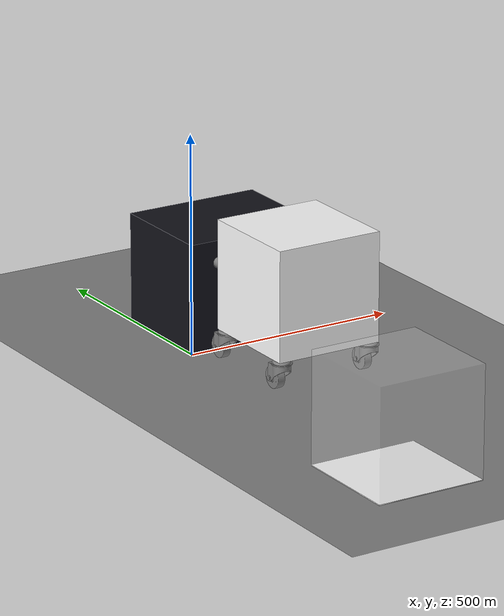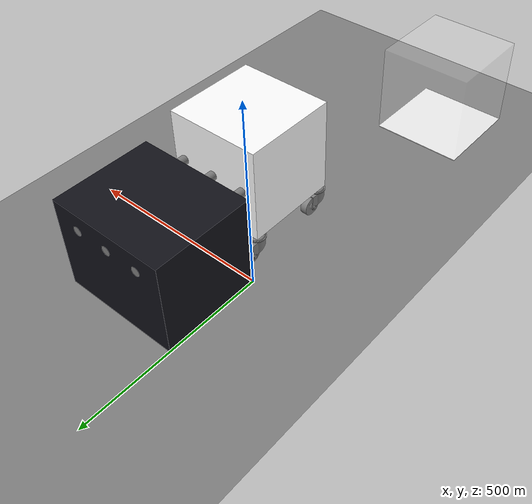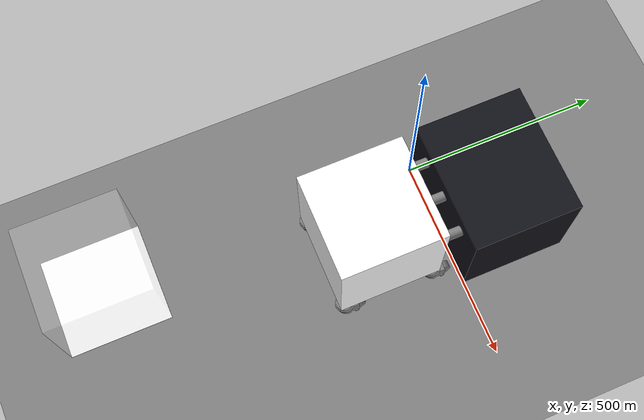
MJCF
<mujoco model="pushing_striker">
  <compiler inertiafromgeom="true" angle="radian" coordinate="local" meshdir="meshes/"/>
  <option timestep="1.0" solver="PGS"  gravity="0 0 0" iterations="20" integrator="Euler"/>

  <asset>
    <mesh file="push_box.stl"/>
    <mesh file="pushing_hand.stl"/>
    <mesh file="caster_wheel.stl"/>
    <mesh file="caster_wheel_O.stl"/>
    <mesh file="caster_middle.stl"/>
    <mesh file="caster_top.stl"/>

    <texture type="skybox" builtin="gradient" rgb1=".2 .3 .4" rgb2="1 1 1"
      width="100" height="100"/>
    <material name="MatViz" specular="1" shininess=".1" reflectance="0.5" rgba=".07 .07 .1 1"/>
  </asset>
  <default>
    <joint armature='0.04' damping="1"/>
    <geom friction="0 0 0" density="300" margin="0.002" condim="1" contype="0" conaffinity="0"/>
    <default class ="vizNcoll">
      <geom material="MatViz" type="mesh" condim="1" contype="1" conaffinity="1" margin="0.001"/>
    </default>
  </default>

  <worldbody>
    <light diffuse=".5 .5 .5" pos="0 0 3" dir="0 0 -1"/>
    <geom name="table" type="plane" pos="0 0 0" size="1000 2000 1000" contype="1" conaffinity="1"/>

    <body name="push_box" childclass="vizNcoll" pos="0 0 0">
      <geom mesh="push_box" contype="1" conaffinity="0"/>
    </body>

    <body name="pushing_hand_1" pos="68 260 200">
      <joint name="slider_1" type="slide" pos="0 0 0" axis="0 1 0" range="-2 2" damping="1.0" limited="true"/>
      <geom mesh="pushing_hand" axisangle="1 0 0 1.570796" type="mesh" condim="1" contype="1" conaffinity="0"/>
    </body>
    <body name="pushing_hand_2" pos="158 260 200">
      <joint name="slider_2" type="slide" pos="0 0 0" axis="0 1 0" range="-200 0" damping="1.0" limited="true"/>
      <geom mesh="pushing_hand" axisangle="1 0 0 1.570796" type="mesh" condim="1" contype="1" conaffinity="0"/>
    </body>
    <body name="pushing_hand_3" pos="248 260 200">
      <joint name="slider_3" type="slide" pos="0 0 0" axis="0 1 0" range="-200 0" damping="1.0" limited="true"/>
      <geom mesh="pushing_hand" axisangle="1 0 0 1.570796" type="mesh" condim="1" contype="1" conaffinity="0"/>
    </body>

    <body name="object" pos="158 -180 195" axisangle="0 0 1 3.141592">
      <geom type="box" rgba="1 1 1 1" pos="0 0 0" size="125 125 125" contype="1" conaffinity="0"/>
      <body name="top_1" pos="110 110 -170" >
        <geom mesh="caster_top" axisangle="1 0 0 1.570796" type="mesh" condim="1" contype="1" conaffinity="0"/>
        <body name="middle_1" pos="0 0 0" >
          <joint name="top_middle_1" type="hinge" pos="0 0 0" axis="0 0 1" range="-3.141592 3.141592" damping="1.0" limited="true"/>
          <geom mesh="caster_middle" axisangle="1 0 0 1.570796" type="mesh" condim="1" contype="1" conaffinity="0"/>
          <body name="wheel_1" pos="0 -25 0">
              <joint name="middle_wheel_1" type="hinge" pos="0 0 0" axis="1 0 0" damping="0.01" />
              <geom mesh="caster_wheel_O" axisangle="1 0 0 1.570796" type="mesh" condim="1" contype="1" conaffinity="0"/>
          </body>
        </body>
      </body>
      <body name="top_2" pos="110 -110 -170" >
        <geom mesh="caster_top" axisangle="1 0 0 1.570796" type="mesh" condim="1" contype="1" conaffinity="0"/>
        <body name="middle_2" pos="0 0 0" >
          <joint name="top_middle_2" type="hinge" pos="0 0 0" axis="0 0 1" range="-3.141592 3.141592" damping="1.0" limited="true"/>
          <geom mesh="caster_middle" axisangle="1 0 0 1.570796" type="mesh" condim="1" contype="1" conaffinity="0"/>
          <body name="wheel_2" pos="0 -25 0">
              <joint name="middle_wheel_2" type="hinge" pos="0 0 0" axis="1 0 0" damping="0.01" />
              <geom mesh="caster_wheel_O" axisangle="1 0 0 1.570796" type="mesh" condim="1" contype="1" conaffinity="0"/>
          </body>
        </body>
      </body>
      <body name="top_3" pos="-110 110 -170" >
        <geom mesh="caster_top" axisangle="1 0 0 1.570796" type="mesh" condim="1" contype="1" conaffinity="0"/>
        <body name="middle_3" pos="0 0 0" >
          <joint name="top_middle_3" type="hinge" pos="0 0 0" axis="0 0 1" range="-3.141592 3.141592" damping="1.0" limited="true"/>
          <geom mesh="caster_middle" axisangle="1 0 0 1.570796" type="mesh" condim="1" contype="1" conaffinity="0"/>
          <body name="wheel_3" pos="0 -25 0">
              <joint name="middle_wheel_3" type="hinge" pos="0 0 0" axis="1 0 0" damping="0.01" />
              <geom mesh="caster_wheel_O" axisangle="1 0 0 1.570796" type="mesh" condim="1" contype="1" conaffinity="0"/>
          </body>
        </body>
      </body>
      <body name="top_4" pos="-110 -110 -170" >
        <geom mesh="caster_top" axisangle="1 0 0 1.570796" type="mesh" condim="1" contype="1" conaffinity="0"/>
        <body name="middle_4" pos="0 0 0" >
          <joint name="top_middle_4" type="hinge" pos="0 0 0" axis="0 0 1" range="-3.141592 3.141592" damping="1.0" limited="true"/>
          <geom mesh="caster_middle" axisangle="1 0 0 1.570796" type="mesh" condim="1" contype="1" conaffinity="0"/>
          <body name="wheel_4" pos="0 -25 0">
              <joint name="middle_wheel_4" type="hinge" pos="0 0 0" axis="1 0 0" damping="0.01" />
              <geom mesh="caster_wheel_O" axisangle="1 0 0 1.570796" type="mesh" condim="1" contype="1" conaffinity="0"/>
          </body>
        </body>
      </body>

    </body>

    <body name="goal" pos="0.0 -800 0.0">
      <geom rgba="1. 1. 1. 0.1" pos="0 0 125" type="box" size="125 125 125" contype="0" conaffinity="0"/>
      <body name="coaster" pos="0 0 0">
        <geom rgba="1. 1. 1. 1" type="box" size="125 125 1" density='1000000' contype="0" conaffinity="0"/>
      </body>
      <joint name="goal_free" type="free" pos="0 0 0" limited="false" damping="0"/>
    </body>

  </worldbody>

  <actuator>
      <motor joint="slider_1" ctrlrange="-2 2"  ctrllimited="true" name="slide_1"/>

  </actuator>

</mujoco>
